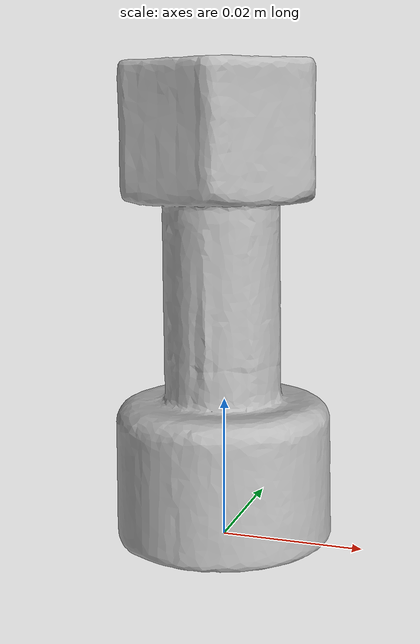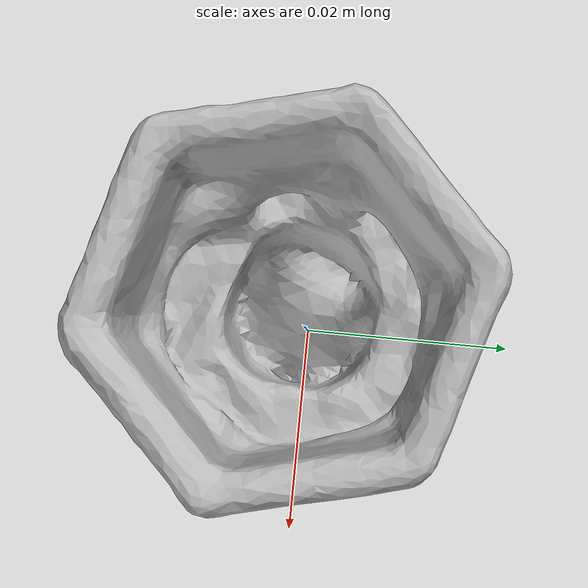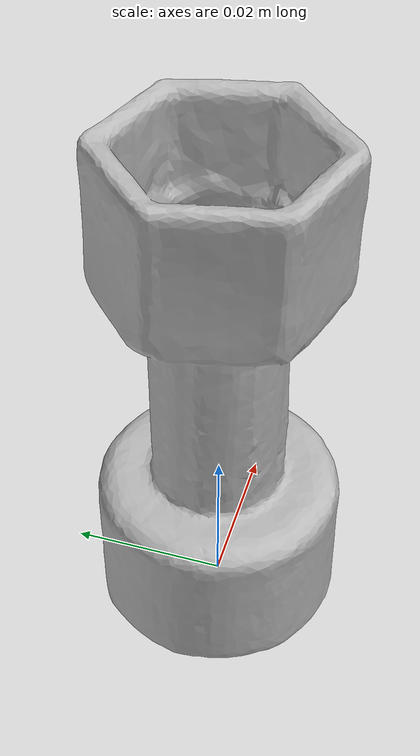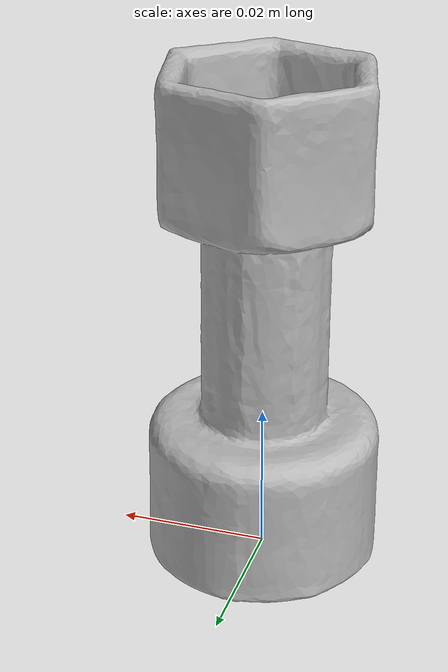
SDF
<?xml version="1.0" ?>
<sdf version='1.8'>
  <model name='ycb_072-c_toy_airplane'>
    <link name='body'>
      <inertial>
        <mass>0.0281643723345</mass>
        <pose>-0.000204753366 -0.000100556872 0.0261432525 0 0 0</pose>
        <inertia>
          <ixx>1.24123614826e-05</ixx>
          <ixy>8.75819965263e-09</ixy>
          <ixz>1.91953541849e-07</ixz>
          <iyy>1.24157478258e-05</iyy>
          <iyz>1.01547441625e-08</iyz>
          <izz>3.13542910121e-06</izz>
        </inertia>
      </inertial>
      <visual name='ycb_072-c_toy_airplane_visual'>
        <pose>0.033194 -0.003485 -2e-06 0 0 0</pose>
        <geometry>
          <mesh>
            <uri>model://ycb_072-c_toy_airplane/meshes/textured.dae</uri>
          </mesh>
        </geometry>
      </visual>
      <collision name='ycb_072-c_toy_airplane_collision'>
        <pose>0.033194 -0.003485 -2e-06 0 0 0</pose>
        <geometry>
          <mesh>
            <uri>model://ycb_072-c_toy_airplane/meshes/nontextured.stl</uri>
          </mesh>
        </geometry>
        <max_contacts>10</max_contacts>
        <surface>
          <contact>
            <ode>
              <kp>1e15</kp>
              <kd>1e13</kd>
            </ode>
          </contact>
        </surface>
      </collision>
    </link>
  </model>
</sdf>
